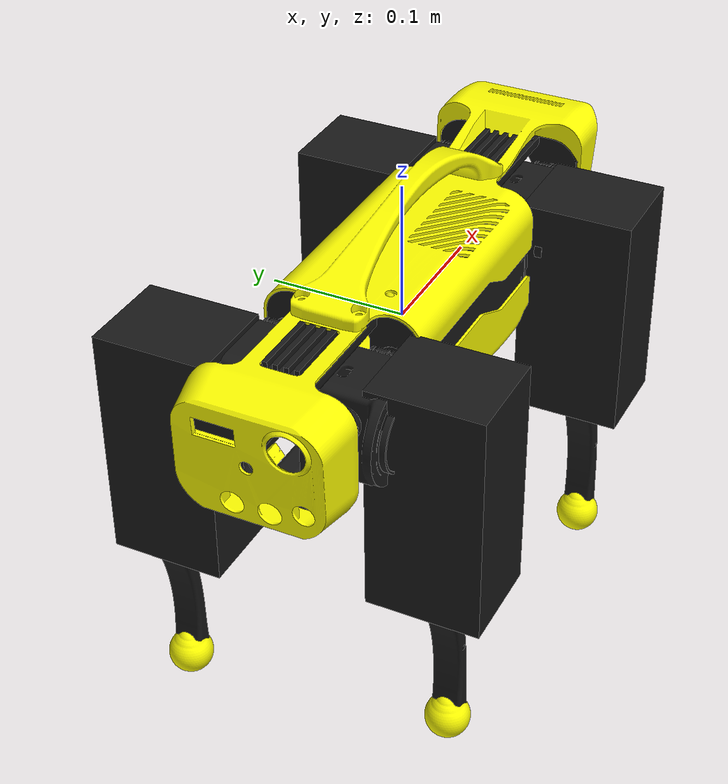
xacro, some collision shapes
<?xml version="1.0"?>
<robot name="spot" xmlns:xacro="http://www.ros.org/wiki/xacro">

  <!-- Include Macros -->
  <xacro:include filename="$(find mini_ros)/yellow_urdf/yellow_spot_macro.xacro" />
  <xacro:include filename="$(find mini_ros)/yellow_urdf/transmissions.xacro" />

  <!-- Robot description -->
  <!-- STATIC Links -->
  <link name="base_link"/>

  <!-- MAIN BODY -->
  <xacro:mesh_link name="base_inertia"
              origin_rpy="0 0 -${pi/2}" origin_xyz="0 0 0"
              i_rpy="0 0 0" i_xyz="0 0 0"
              mass="0.6"
              c_xyz="0 0 0"
              length="0.114"
              width="0.232"
              height="0.145"
              matname="yellow"
              meshfile="package://mini_ros/yellow_stl/MAINBODY.stl"
              meshscale="0.001 0.001 0.001" /> <!-- mm to m -->

  <!-- BATTERY -->

  <!-- CHASSIS LEFT -->
  <xacro:mesh_link name="chassis_left"
              origin_rpy="0 0 -${pi/2}" origin_xyz="0 -0.052 0"
              i_rpy="0 0 0" i_xyz="0 0 0"
              mass="0.024"
              c_xyz="0 0 0"
              length="0.0135"
              width="0.1687"
              height="0.0414"
              matname="black"
              meshfile="package://mini_ros/yellow_stl/platform_left_side_v2_rescaled.stl"
              meshscale="0.001 0.001 0.001" /> <!-- mm to m -->

  <!-- CHASSIS Right -->
  <xacro:mesh_link name="chassis_right"
              origin_rpy="0 0 -${pi/2}" origin_xyz="0 0.052 0"
              i_rpy="0 0 0" i_xyz="0 0 0"
              mass="0.024"
              c_xyz="0 0 0"
              length="0.0135"
              width="0.1687"
              height="0.0414"
              matname="black"
              meshfile="package://mini_ros/yellow_stl/platform_right_side_v2_rescaled.stl"
              meshscale="0.001 0.001 0.001" /> <!-- mm to m -->

  <!-- FRONT -->
  <xacro:mesh_link name="front"
              origin_rpy="0 0 -${pi/2}" origin_xyz="0 0 0"
              i_rpy="0 0 0" i_xyz="0 0 0"
              mass="0.153"
              c_xyz="0.16 0 0.006"
              length="0.116"
              width="0.127"
              height="0.103"
              matname="yellow"
              meshfile="package://mini_ros/yellow_stl/front_cover_v2.stl"
              meshscale="0.001 0.001 0.001" /> <!-- mm to m -->

  <!-- BACK -->
  <xacro:mesh_link name="back"
              origin_rpy="0 0 -${pi/2}" origin_xyz="0 0 0"
              i_rpy="0 0 0" i_xyz="0 0 0"
              mass="0.116"
              c_xyz="-0.16 0 0.006"
              length="0.114"
              width="0.117"
              height="0.091"
              matname="yellow"
              meshfile="package://mini_ros/yellow_stl/back_cover_v2.stl"
              meshscale="0.001 0.001 0.001" /> <!-- mm to m -->

  <!-- FRONT BRACKET -->
  <xacro:mesh_link name="front_bracket"
              origin_rpy="0 0 -${pi/2}" origin_xyz="0 0 0"
              i_rpy="0 0 0" i_xyz="0 0 0"
              mass="0.140"
              c_xyz="0.1 0 0"
              length="0.110"
              width="0.103"
              height="0.092"
              matname="black"
              meshfile="package://mini_ros/yellow_stl/front_plate_v2.stl"
              meshscale="0.001 0.001 0.001" /> <!-- mm to m -->

  <!-- BACK BRACKET -->
  <xacro:mesh_link name="back_bracket"
              origin_rpy="0 0 -${pi/2}" origin_xyz="0 0 0"
              i_rpy="0 0 0" i_xyz="0 0 0"
              mass="0.153"
              c_xyz="-0.1 0 0"
              length="0.110"
              width="0.104"
              height="0.092"
              matname="black"
              meshfile="package://mini_ros/yellow_stl/back_plate_v2.stl"
              meshscale="0.001 0.001 0.001" /> <!-- mm to m -->

  <!-- DYNAMIC LINKS (Joints Included) -->
  <!-- FRONT LEFT LEG -->
  <!-- HIP -->
  <xacro:mesh_link name="front_left_hip"
              origin_rpy="0 0 -${pi/2}" origin_xyz="0 0 0"
              i_rpy="0 0 0" i_xyz="0 0 0"
              mass="0.209"
              c_xyz="0.015 0.01 -0.01"
              length="0.05"
              width="0.072"
              height="0.072"
              matname="black"
              meshfile="package://mini_ros/yellow_stl/LEFT_HIP.stl"
              meshscale="0.001 0.001 0.001" /> <!-- mm to m -->
  <xacro:rev_joint name="motor_front_left_hip" type="revolute"
                    axis_xyz="1 0 0"
                    origin_rpy="0 0 0" origin_xyz="0.181 0.038 0.03"
                    parent="front_bracket" child="front_left_hip"
                    effort="4.0" velocity="4.0"
                    damping="0.0"
                    friction="0.0"
                    lower="-1.04"
                    upper="1.04"/>
  <!-- UPPER LEG -->
  <xacro:mesh_link name="front_left_upper_leg"
              origin_rpy="0 0 -${pi/2}" origin_xyz="0 0 0"
              i_rpy="0 0 0" i_xyz="0 0 0"
              mass="0.268"
              c_xyz="0 0.02 -0.05"
              length="0.081"
              width="0.068"
              height="0.169"
              matname="black"
              meshfile="package://mini_ros/yellow_stl/LEFT_UPPER_LEG.stl"
              meshscale="0.001 0.001 0.001" /> <!-- mm to m -->
  <xacro:rev_joint name="motor_front_left_upper_leg" type="revolute"
                    axis_xyz="0 1 0"
                    origin_rpy="0 0 0" origin_xyz="${0.124-0.181} ${0.068-0.038} ${0.018-0.03}"
                    parent="front_left_hip" child="front_left_upper_leg"
                    effort="4.0" velocity="4.0"
                    damping="0.0"
                    friction="0.0"
                    lower="${-pi/2}"
                    upper="2.59"/>
  <!-- LOWER LEG -->
  <xacro:mesh_link name="front_left_lower_leg"
              origin_rpy="0 0 -${pi/2}" origin_xyz="0 0 0"
              i_rpy="0 0 0" i_xyz="0 0 0"
              mass="0.036"
              c_xyz="0 0 -0.06"
              length="0.022"
              width="0.034"
              height="0.155"
              matname="black"
              meshfile="package://mini_ros/yellow_stl/LEFT_LOWER_LEG.stl"
              meshscale="0.001 0.001 0.001" /> <!-- mm to m -->
  <xacro:rev_joint name="motor_front_left_lower_leg" type="revolute"
                    axis_xyz="0 1 0"
                    origin_rpy="0 0 0" origin_xyz="${0.124-0.124} ${0.0965-0.068} ${-0.101-0.018}"
                    parent="front_left_upper_leg" child="front_left_lower_leg"
                    effort="4.0" velocity="4.0"
                    damping="0.0"
                    friction="0.0"
                    lower="-2.9"
                    upper="${pi/2}"/>
  <!-- FOOT -->
  <xacro:mesh_link_sphere name="front_left_foot"
              origin_rpy="0 0 -${pi/2}" origin_xyz="0 0 0"
              i_rpy="0 0 0" i_xyz="0 0 0"
              mass="0.009"
              c_xyz="${-0.247} ${-0.068} ${0.18}"
              length="0.031"
              width="0.032"
              height="0.036"
              radius="0.02"
              matname="yellow"
              meshfile="package://mini_ros/yellow_stl/FOOT.stl"
              meshscale="0.001 0.001 0.001" /> <!-- mm to m -->
  <xacro:frame_joint name="front_left_leg_foot" type="fixed"
                  origin_rpy="0 0 0" origin_xyz="${0.121-0.124} 0 ${-0.228+0.101}"
                  parent="front_left_lower_leg" child="front_left_foot"/>

  <!-- BACK LEFT LEG -->
  <!-- HIP -->
  <xacro:mesh_link name="back_left_hip"
              origin_rpy="0 0 -${pi/2}" origin_xyz="0 0 0"
              i_rpy="0 0 0" i_xyz="0 0 0"
              mass="0.209"
              c_xyz="0.015 0.01 -0.01"
              length="0.05"
              width="0.072"
              height="0.072"
              matname="black"
              meshfile="package://mini_ros/yellow_stl/LEFT_HIP.stl"
              meshscale="0.001 0.001 0.001" /> <!-- mm to m -->
  <xacro:rev_joint name="motor_back_left_hip" type="revolute"
                    axis_xyz="1 0 0"
                    origin_rpy="0 0 0" origin_xyz="-0.089 0.038 0.03"
                    parent="back_bracket" child="back_left_hip"
                    effort="4.0" velocity="4.0"
                    damping="0.0"
                    friction="0.0"
                    lower="-1.04"
                    upper="1.04"/>

  <!-- UPPER LEG -->
  <xacro:mesh_link name="back_left_upper_leg"
              origin_rpy="0 0 -${pi/2}" origin_xyz="0 0 0"
              i_rpy="0 0 0" i_xyz="0 0 0"
              mass="0.268"
              c_xyz="0 0.02 -0.05"
              length="0.081"
              width="0.068"
              height="0.169"
              matname="black"
              meshfile="package://mini_ros/yellow_stl/LEFT_UPPER_LEG.stl"
              meshscale="0.001 0.001 0.001" /> <!-- mm to m -->
  <xacro:rev_joint name="motor_back_left_upper_leg" type="revolute"
                    axis_xyz="0 1 0"
                    origin_rpy="0 0 0" origin_xyz="${-0.146+0.089} ${0.068-0.038} ${0.018-0.03}"
                    parent="back_left_hip" child="back_left_upper_leg"
                    effort="4.0" velocity="4.0"
                    damping="0.0"
                    friction="0.0"
                    lower="${-pi/2}"
                    upper="2.59"/>
  <!-- LOWER LEG -->
  <xacro:mesh_link name="back_left_lower_leg"
              origin_rpy="0 0 -${pi/2}" origin_xyz="0 0 0"
              i_rpy="0 0 0" i_xyz="0 0 0"
              mass="0.036"
              c_xyz="0 0 -0.06"
              length="0.022"
              width="0.034"
              height="0.155"
              matname="black"
              meshfile="package://mini_ros/yellow_stl/LEFT_LOWER_LEG.stl"
              meshscale="0.001 0.001 0.001" /> <!-- mm to m -->
  <xacro:rev_joint name="motor_back_left_lower_leg" type="revolute"
                    axis_xyz="0 1 0"
                    origin_rpy="0 0 0" origin_xyz="${0.146-0.146} ${0.0965-0.068} ${-0.101-0.018}"
                    parent="back_left_upper_leg" child="back_left_lower_leg"
                    effort="4.0" velocity="4.0"
                    damping="0.0"
                    friction="0.0"
                    lower="-2.9"
                    upper="${pi/2}"/>
  <!-- FOOT -->
  <xacro:mesh_link_sphere name="back_left_foot"
              origin_rpy="0 0 -${pi/2}" origin_xyz="0 0 0"
              i_rpy="0 0 0" i_xyz="0 0 0"
              mass="0.009"
              c_xyz="${-0.247} ${-0.068} ${0.18}"
              length="0.031"
              width="0.032"
              height="0.036"
              radius="0.02"
              matname="yellow"
              meshfile="package://mini_ros/yellow_stl/FOOT.stl"
              meshscale="0.001 0.001 0.001" /> <!-- mm to m -->
  <xacro:frame_joint name="back_left_leg_foot" type="fixed"
                  origin_rpy="0 0 0" origin_xyz="${-0.149+0.146} 0 ${-0.228+0.101}"
                  parent="back_left_lower_leg" child="back_left_foot"/>

  <!-- FRONT RIGHT LEG -->
  <!-- HIP -->
  <xacro:mesh_link name="front_right_hip"
              origin_rpy="0 0 -${pi/2}" origin_xyz="0 0 0"
              i_rpy="0 0 0" i_xyz="0 0 0"
              mass="0.209"
              c_xyz="0.015 ${-0.01} -0.01"
              length="0.05"
              width="0.072"
              height="0.072"
              matname="black"
              meshfile="package://mini_ros/yellow_stl/RIGHT_HIP.stl"
              meshscale="0.001 0.001 0.001" /> <!-- mm to m -->
  <xacro:rev_joint name="motor_front_right_hip" type="revolute"
                    axis_xyz="1 0 0"
                    origin_rpy="0 0 0" origin_xyz="0.181 -0.038 0.03"
                    parent="front_bracket" child="front_right_hip"
                    effort="4.0" velocity="4.0"
                    damping="0.0"
                    friction="0.0"
                    lower="-1.04"
                    upper="1.04"/>
  <!-- UPPER LEG -->
  <xacro:mesh_link name="front_right_upper_leg"
              origin_rpy="0 0 -${pi/2}" origin_xyz="0 0 0"
              i_rpy="0 0 0" i_xyz="0 0 0"
              mass="0.268"
              c_xyz="0 ${-0.02} -0.05"
              length="0.081"
              width="0.068"
              height="0.169"
              matname="black"
              meshfile="package://mini_ros/yellow_stl/RIGHT_UPPER_LEG.stl"
              meshscale="0.001 0.001 0.001" /> <!-- mm to m -->
  <xacro:rev_joint name="motor_front_right_upper_leg" type="revolute"
                    axis_xyz="0 1 0"
                    origin_rpy="0 0 0" origin_xyz="${0.124-0.181} ${-0.07+0.038} ${0.018-0.03}"
                    parent="front_right_hip" child="front_right_upper_leg"
                    effort="4.0" velocity="4.0"
                    damping="0.0"
                    friction="0.0"
                    lower="${-pi/2}"
                    upper="2.59"/>
  <!-- LOWER LEG -->
  <xacro:mesh_link name="front_right_lower_leg"
              origin_rpy="0 0 -${pi/2}" origin_xyz="0 0 0"
              i_rpy="0 0 0" i_xyz="0 0 0"
              mass="0.036"
              c_xyz="0 0 -0.06"
              length="0.022"
              width="0.034"
              height="0.155"
              matname="black"
              meshfile="package://mini_ros/yellow_stl/RIGHT_LOWER_LEG.stl"
              meshscale="0.001 0.001 0.001" /> <!-- mm to m -->
  <xacro:rev_joint name="motor_front_right_lower_leg" type="revolute"
                    axis_xyz="0 1 0"
                    origin_rpy="0 0 0" origin_xyz="${0.146-0.146} ${-0.0965+0.07} ${-0.101-0.018}"
                    parent="front_right_upper_leg" child="front_right_lower_leg"
                    effort="4.0" velocity="4.0"
                    damping="0.0"
                    friction="0.0"
                    lower="-2.9"
                    upper="${pi/2}"/>
  <!-- FOOT -->
  <xacro:mesh_link_sphere name="front_right_foot"
              origin_rpy="0 0 -${pi/2}" origin_xyz="0 0 0"
              i_rpy="0 0 0" i_xyz="0 0 0"
              mass="0.009"
              c_xyz="${-0.247} ${0.138} ${0.18}"
              length="0.031"
              width="0.032"
              height="0.036"
              radius="0.02"
              matname="yellow"
              meshfile="package://mini_ros/yellow_stl/FOOT.stl"
              meshscale="0.001 0.001 0.001" /> m to mm
  <xacro:frame_joint name="front_right_leg_foot" type="fixed"
                  origin_rpy="0 0 0" origin_xyz="${0.121-0.124} 0 ${-0.228+0.101}"
                  parent="front_right_lower_leg" child="front_right_foot"/>

  <!-- BACK RIGHT LEG -->
  <!-- HIP -->
  <xacro:mesh_link name="back_right_hip"
              origin_rpy="0 0 -${pi/2}" origin_xyz="0 0 0"
              i_rpy="0 0 0" i_xyz="0 0 0"
              mass="0.209"
              c_xyz="0.015 ${-0.01} -0.01"
              length="0.05"
              width="0.072"
              height="0.072"
              matname="black"
              meshfile="package://mini_ros/yellow_stl/RIGHT_HIP.stl"
              meshscale="0.001 0.001 0.001" /> <!-- mm to m -->
  <xacro:rev_joint name="motor_back_right_hip" type="revolute"
                    axis_xyz="1 0 0"
                    origin_rpy="0 0 0" origin_xyz="-0.089 -0.038 0.03"
                    parent="back_bracket" child="back_right_hip"
                    effort="4.0" velocity="4.0"
                    damping="0.0"
                    friction="0.0"
                    lower="-1.04"
                    upper="1.04"/>
  <!-- UPPER LEG -->
  <xacro:mesh_link name="back_right_upper_leg"
              origin_rpy="0 0 -${pi/2}" origin_xyz="0 0 0"
              i_rpy="0 0 0" i_xyz="0 0 0"
              mass="0.268"
              c_xyz="0 ${-0.02} -0.05"
              length="0.081"
              width="0.068"
              height="0.169"
              matname="black"
              meshfile="package://mini_ros/yellow_stl/RIGHT_UPPER_LEG.stl"
              meshscale="0.001 0.001 0.001" /> <!-- mm to m -->
  <xacro:rev_joint name="motor_back_right_upper_leg" type="revolute"
                    axis_xyz="0 1 0"
                    origin_rpy="0 0 0" origin_xyz="${0.146-0.181} ${-0.07+0.038} ${0.018-0.03}"
                    parent="back_right_hip" child="back_right_upper_leg"
                    effort="4.0" velocity="4.0"
                    damping="0.0"
                    friction="0.0"
                    lower="${-pi/2}"
                    upper="2.59"/>
  <!-- LOWER LEG -->
  <xacro:mesh_link name="back_right_lower_leg"
              origin_rpy="0 0 -${pi/2}" origin_xyz="0 0 0"
              i_rpy="0 0 0" i_xyz="0 0 0"
              mass="0.036"
              c_xyz="0 0 -0.06"
              length="0.022"
              width="0.034"
              height="0.155"
              matname="black"
              meshfile="package://mini_ros/yellow_stl/RIGHT_LOWER_LEG.stl"
              meshscale="0.001 0.001 0.001" /> <!-- mm to m -->
  <xacro:rev_joint name="motor_back_right_lower_leg" type="revolute"
                    axis_xyz="0 1 0"
                    origin_rpy="0 0 0" origin_xyz="${0.146-0.146} ${-0.0965+0.07} ${-0.101-0.018}"
                    parent="back_right_upper_leg" child="back_right_lower_leg"
                    effort="4.0" velocity="4.0"
                    damping="0.0"
                    friction="0.0"
                    lower="-2.9"
                    upper="${pi/2}"/>
  <!-- FOOT -->
  <xacro:mesh_link_sphere name="back_right_foot"
              origin_rpy="0 0 -${pi/2}" origin_xyz="0 0 0"
              i_rpy="0 0 0" i_xyz="0 0 0"
              mass="0.009"
              c_xyz="${-0.247} ${0.138} ${0.18}"
              length="0.031"
              width="0.032"
              height="0.036"
              radius="0.02"
              matname="yellow"
              meshfile="package://mini_ros/yellow_stl/FOOT.stl"
              meshscale="0.001 0.001 0.001" /> <!-- mm to m -->
  <xacro:frame_joint name="back_right_leg_foot" type="fixed"
                  origin_rpy="0 0 0" origin_xyz="${-0.149+0.146} 0 ${-0.228+0.101}"
                  parent="back_right_lower_leg" child="back_right_foot"/>

<!-- STATIC Joints -->
<!-- FOOTPRINT TO MAIN BODY-->
<xacro:frame_joint name="base_base" type="fixed"
                  origin_rpy="0 0 0" origin_xyz="0 0 0"
                  parent="base_link" child="base_inertia"/>
<!-- MAIN BODY TO BATTERY -->
<!-- MAIN BODY TO CHASSIS LEFT -->
<xacro:frame_joint name="base_left" type="fixed"
                  origin_rpy="0 0 0" origin_xyz="0.00 0.052 0"
                  parent="base_link" child="chassis_left"/>
<!-- MAIN BODY TO CHASSIS RIGHT -->
<xacro:frame_joint name="base_right" type="fixed"
                  origin_rpy="0 0 0" origin_xyz="0.00 -0.052 0"
                  parent="base_link" child="chassis_right"/>
<!-- MAIN BODY TO FRONT -->
<xacro:frame_joint name="base_front" type="fixed"
                  origin_rpy="0 0 0" origin_xyz="0 0 0"
                  parent="base_link" child="front"/>
<!-- MAIN BODY TO BACK -->
<xacro:frame_joint name="base_back" type="fixed"
                  origin_rpy="0 0 0" origin_xyz="0 0 0"
                  parent="base_link" child="back"/>
<!-- MAIN BODY TO FRONT BRACKET -->
<xacro:frame_joint name="base_front_bracket" type="fixed"
                  origin_rpy="0 0 0" origin_xyz="0 0 0"
                  parent="base_link" child="front_bracket"/>
<!-- MAIN BODY TO BACK BRACKET -->
<xacro:frame_joint name="base_back_bracket" type="fixed"
                  origin_rpy="0 0 0" origin_xyz="0 0 0"
                  parent="base_link" child="back_bracket"/>

<xacro:quadruped_transmission leg="front_left"/>
<xacro:quadruped_transmission leg="front_right"/>
<xacro:quadruped_transmission leg="back_left"/>
<xacro:quadruped_transmission leg="back_right"/>

<gazebo>
	<plugin name="gazebo_ros_control" filename="libgazebo_ros_control.so">
      <robotNamespace>/spot</robotNamespace>
	</plugin>
</gazebo>

</robot>

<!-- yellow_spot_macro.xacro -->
<robot xmlns:xacro="http://www.ros.org/wiki/xacro">

  <material name="orange">
    <color rgba="1.0 0.5 0.0 1"/>
  </material>
  <material name="yellow">
    <color rgba="1.0 1.0 0.0 1"/>
  </material>
  <material name="black">
    <color rgba="0.1 0.1 0.1 1"/>
  </material>
  <material name="grey">
    <color rgba="0.6 0.6 0.6 1"/>
  </material>

  <xacro:macro name="rev_joint" params="name type axis_xyz origin_rpy origin_xyz parent child effort velocity damping friction upper lower">
    <joint name="${name}" type="${type}">
      <axis xyz="${axis_xyz}" />
      <origin rpy="${origin_rpy}" xyz="${origin_xyz}" />
      <parent link="${parent}" />
      <child link="${child}" />
      <limit effort="${effort}" velocity="${velocity}" lower="${lower}" upper="${upper}"/>
      <joint_properties damping="${damping}" friction="${friction}" />
    </joint>
  </xacro:macro>

  <xacro:macro name="frame_joint" params="name type origin_rpy origin_xyz parent child">
    <joint name="${name}" type="${type}">
      <origin rpy="${origin_rpy}" xyz="${origin_xyz}" />
      <parent link="${parent}" />
      <child link="${child}" />
    </joint>
  </xacro:macro>

  <xacro:macro name="mesh_link" params="name origin_xyz origin_rpy meshfile meshscale c_xyz matname mass i_xyz i_rpy length width height">
    <link name="${name}">
      <visual>
        <origin rpy="${origin_rpy}" xyz="${origin_xyz}" />
        <geometry>
          <mesh filename="${meshfile}" scale="${meshscale}"/>
        </geometry>
        <material name="${matname}"/>
      </visual>

      <collision>
        <origin rpy="${origin_rpy}" xyz="${c_xyz}" />
        <geometry>
          <box size="${length} ${width} ${height}" />
        </geometry>
      </collision>

      <inertial>
        <mass value="${mass}" />
        <origin rpy="${i_rpy}" xyz="${i_xyz}" /> <!-- Inertial Axes -->
        <inertia ixx="${mass * (width * width + height * height)/12.0}" ixy="${0}" ixz="${0}" iyx="${0}" iyy="${mass * (length * length + height * height)/12.0}" iyz="${0}" izx="${0}" izy="${0}" izz="${mass * (length * length + width * width)/12.0}" />
      </inertial>
    </link>
    <gazebo reference="${name}">
        <xacro:if value="${matname == 'black'}">
          <material>Gazebo/Black</material>
        </xacro:if>
        <xacro:if value="${matname == 'orange'}">
          <material>Gazebo/Orange</material>
        </xacro:if>
        <xacro:if value="${matname == 'yellow'}">
          <material>Gazebo/Yellow</material>
        </xacro:if>
    </gazebo>
  </xacro:macro>

  <xacro:macro name="mesh_link_sphere" params="name origin_xyz origin_rpy meshfile meshscale c_xyz matname mass i_xyz i_rpy length width height radius">
    <link name="${name}">
      <visual>
        <origin rpy="${origin_rpy}" xyz="${origin_xyz}" />
        <geometry>
          <mesh filename="${meshfile}" scale="${meshscale}"/>
        </geometry>
        <material name="${matname}"/>
      </visual>

      <collision>
        <origin rpy="${origin_rpy}" xyz="${c_xyz}" />
        <geometry>
          <mesh filename="${meshfile}" scale="${meshscale}"/>
        </geometry>
        <contact_coefficients mu="10.1"/>
      </collision>

      <inertial>
        <mass value="${mass}" />
        <origin rpy="${i_rpy}" xyz="${i_xyz}" /> <!-- Inertial Axes -->
        <inertia ixx="${mass * (width * width + height * height)/12.0}" ixy="${0}" ixz="${0}" iyx="${0}" iyy="${mass * (length * length + height * height)/12.0}" iyz="${0}" izx="${0}" izy="${0}" izz="${mass * (length * length + width * width)/12.0}" />
      </inertial>
    </link>

    <gazebo reference="${name}">
      <kp>1000000.0</kp>
      <kd>1.0</kd>
      <mu1>0.8</mu1>
      <mu2>0.8</mu2>
      <maxVel>0.0</maxVel>
      <minDepth>0.001</minDepth>
      <material>Gazebo/Yellow</material>
    </gazebo>
  </xacro:macro>

  <!-- Left Leg: prefix is front or rear -->

</robot>
